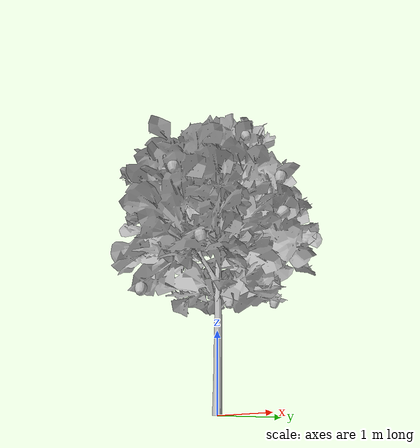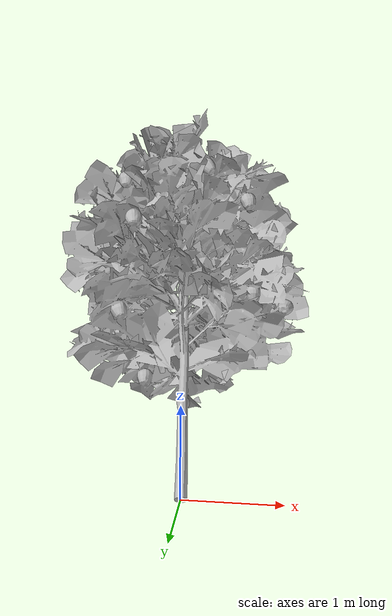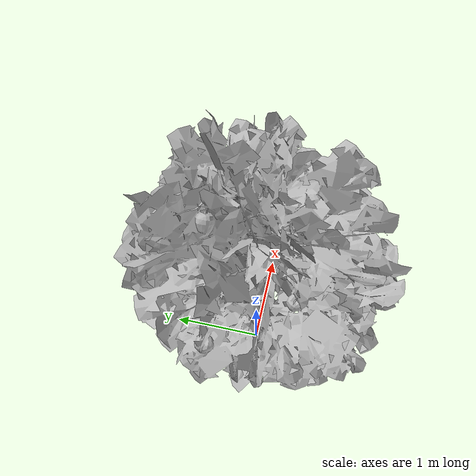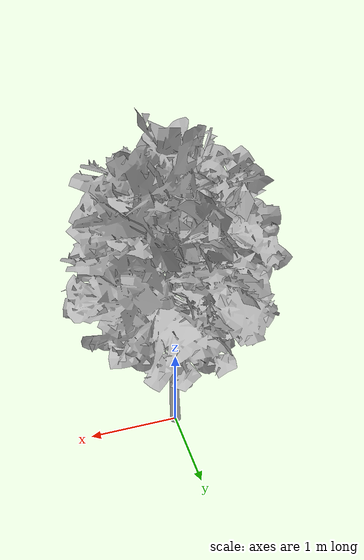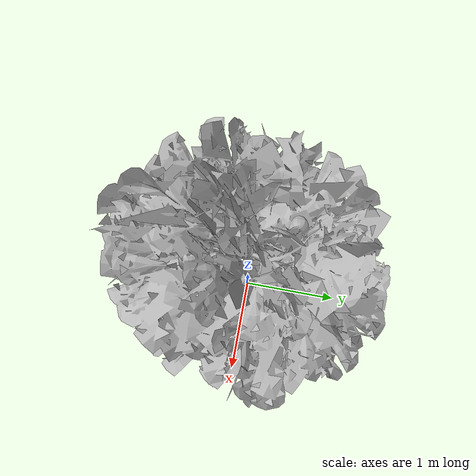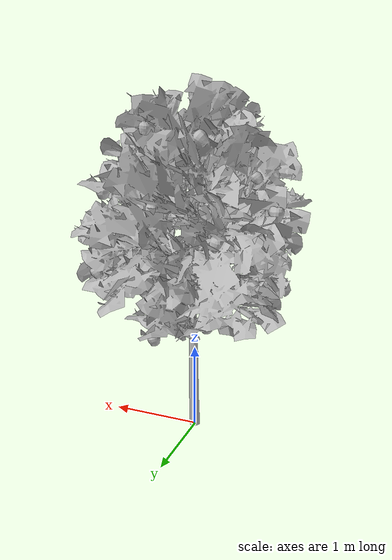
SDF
<?xml version="1.0" ?>
<sdf version="1.9">
  <model name="appletree">
    <static>true</static>
    <link name="link">

      <!-- Use the exact same mesh for collisions! -->
      <collision name="collision">
        <!-- Exact same pose as the visual -->
        <pose>0 0 0 0 0 0</pose>
        <geometry>
          <mesh>
            <uri>model://appletree/meshes/appletree.obj</uri>
            <scale>8 8 8</scale>
          </mesh>
        </geometry>
      </collision>

      <!-- The visual mesh -->
      <visual name="visual">
        <pose>0 0 0 0 0 0</pose>
        <geometry>
          <mesh>
            <uri>model://appletree/meshes/appletree.obj</uri>
            <scale>8 8 8</scale>
          </mesh>
        </geometry>
      </visual>

    </link>
  </model>
</sdf>
